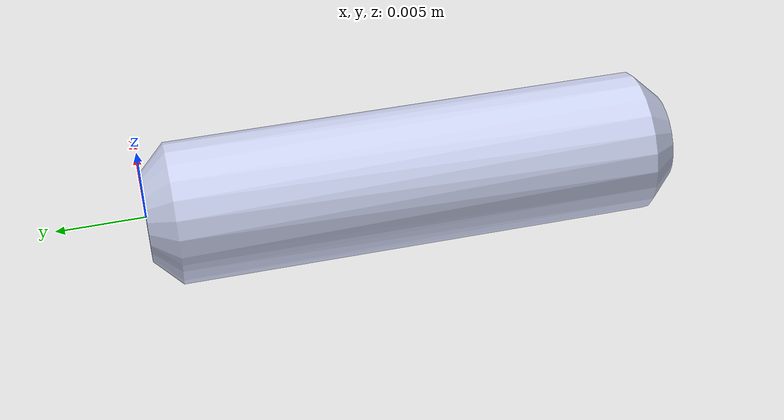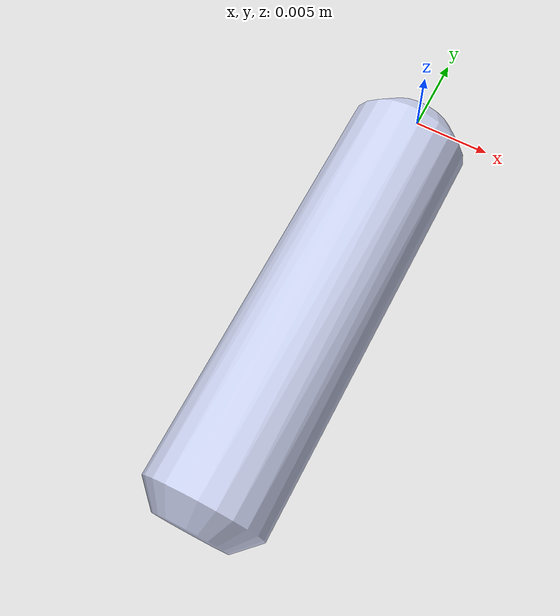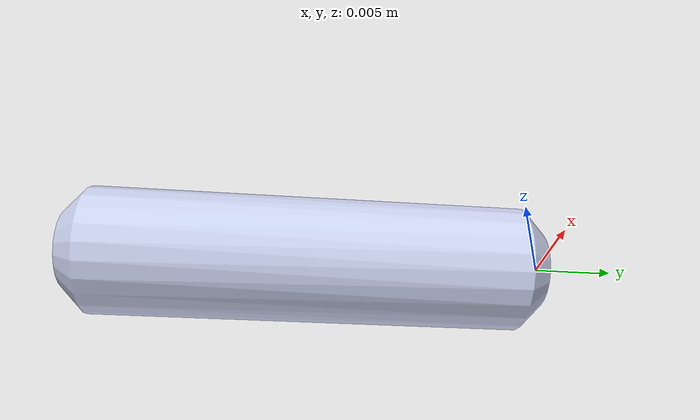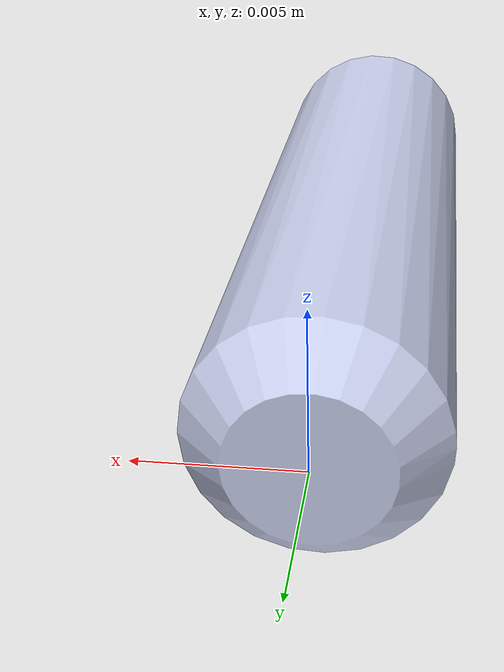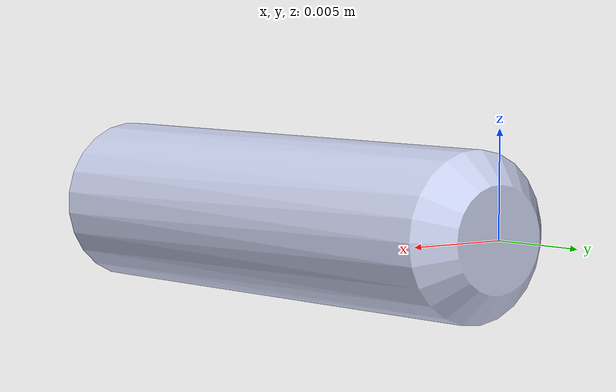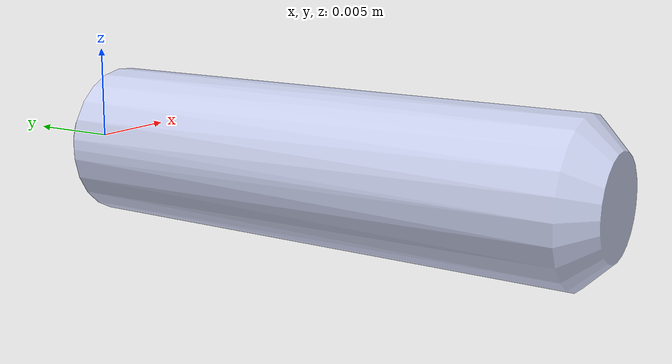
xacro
<?xml version="1.0" encoding="utf-8"?>
<robot name="chair_pin(14ea)" xmlns:xacro="http://www.ros.org/wiki/xacro">
  <link name="chair_pin(14ea)">
    <inertial>
      <origin xyz="9.6242E-20 -0.015 9.18454765366783E-19" rpy="0 0 0" />
      <mass value="0.0014585" />
      <inertia ixx="1.0843E-07" ixy="-3.9375E-36" ixz="-4.53590000002411E-41"
        iyy="1.1439E-08" iyz="5.93878974317931E-24" izz="1.0843E-07" />
    </inertial>
    <visual>
      <origin
        xyz="0 0 0"
        rpy="1.5707963267949 0 0" />
      <geometry>
        <mesh
          filename="package://cai_env/meshes/chair_pin(14ea).STL" />
      </geometry>
      <material
        name="">
        <color
          rgba="0.79216 0.81961 0.93333 1" />
        <texture
          filename="package://cai_env/textures/" />
      </material>
    </visual>
    <collision>
      <origin
        xyz="0 0 0"
        rpy="1.5707963267949 0 0" />
      <geometry>
        <mesh
          filename="package://cai_env/meshes/chair_pin(14ea).STL" />
      </geometry>
    </collision>
  </link>
  <gazebo reference="chair_pin(14ea)">
    <material>Gazebo/Wood</material>
  </gazebo>
</robot>
